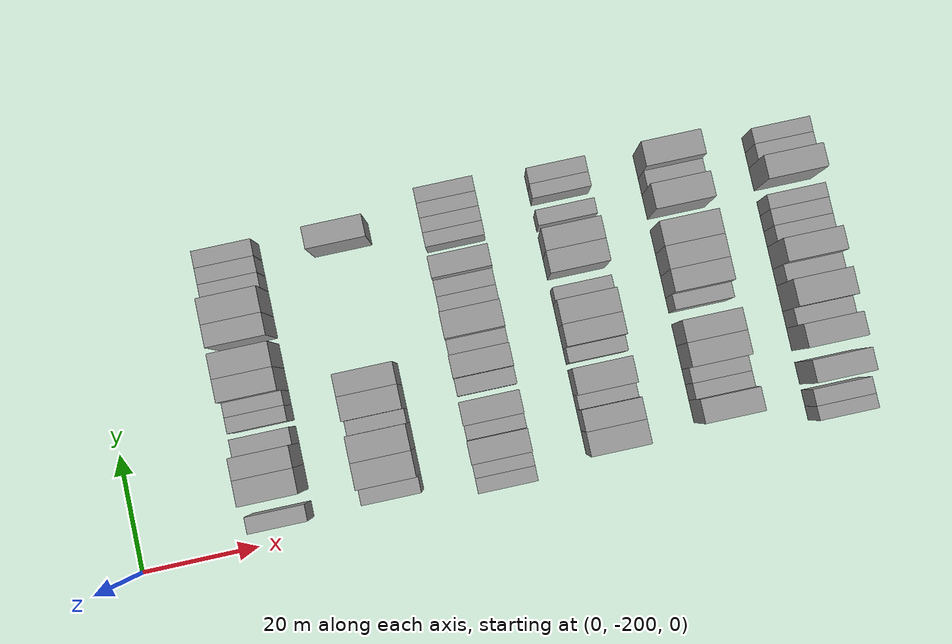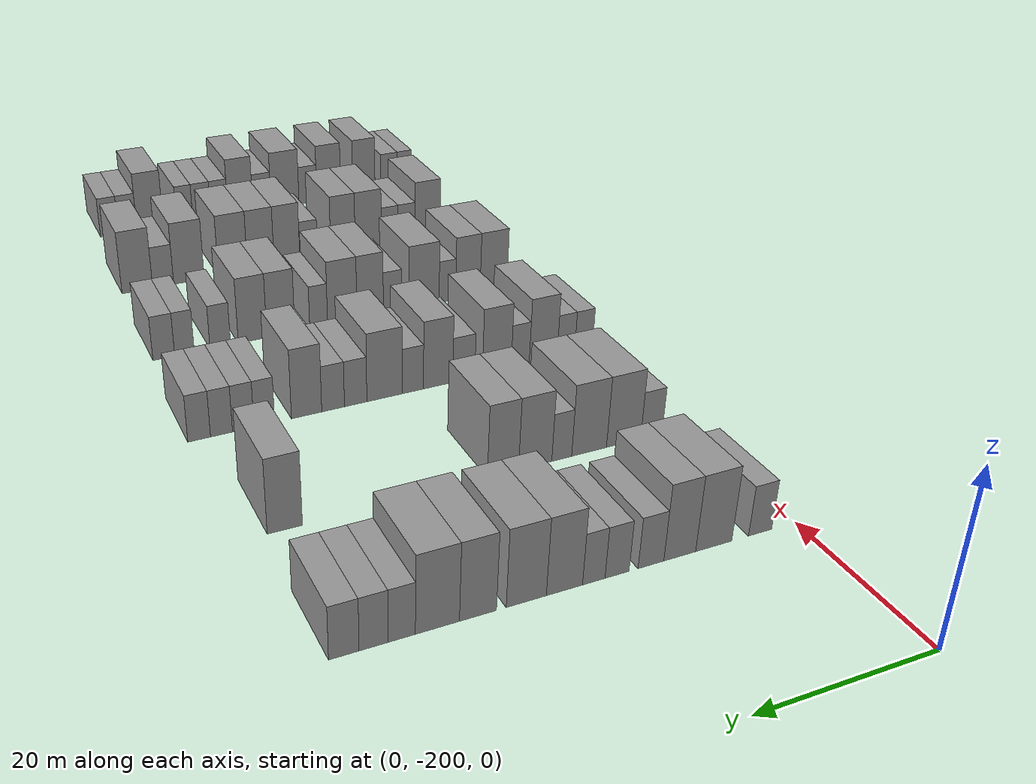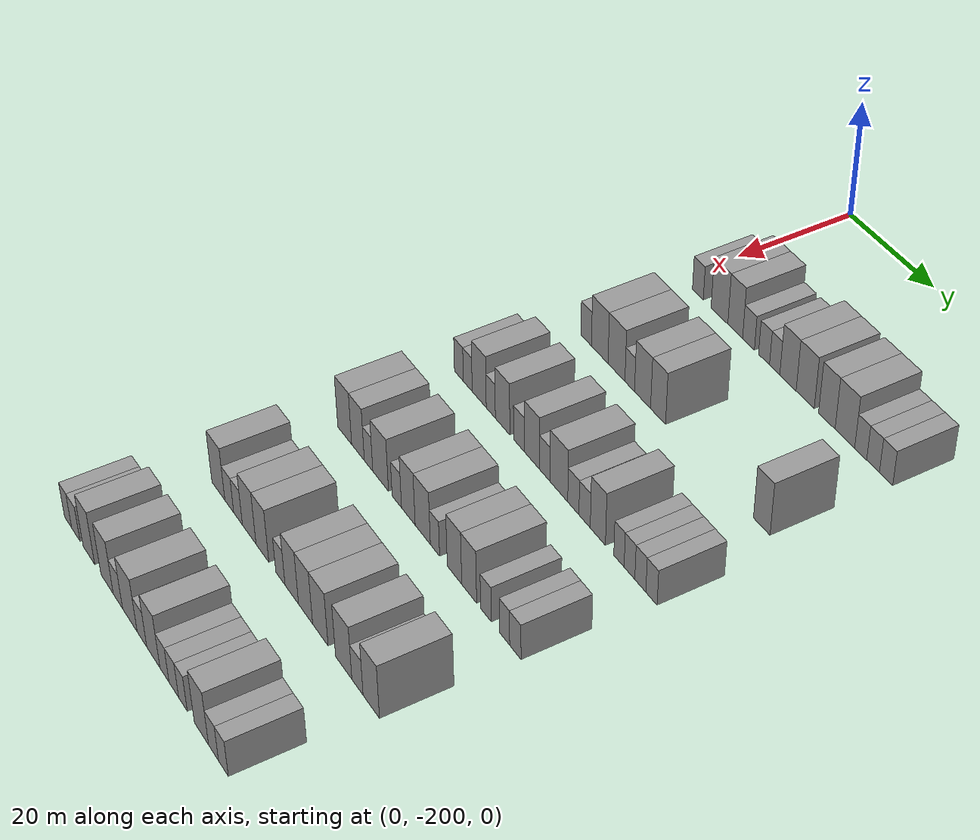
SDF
<sdf version="1.6">
 <world name="default">
  <model name="building_37">
   <static>1</static>
   <pose>25.0000 -195.6696 0 0.000000 0.000000 0.000000</pose>
   <link name="link">
    <pose>0 0 3.00 0 0 0</pose>
    <collision name="collision"><geometry><box><size>10.0000 2.7871 6.0000</size></box></geometry></collision>
    <visual name="visual">
     <cast_shadows>0</cast_shadows>
     <geometry><box><size>10.0000 2.7871 6.0000</size></box></geometry>
     <material>
      <script>
       <uri>model://grey_wall/materials/scripts</uri>
       <uri>model://grey_wall/materials/textures</uri>
       <name>vrc/grey_wall</name>
      </script>
     </material>
    </visual>
   </link>
  </model>
  <model name="building_38">
   <static>1</static>
   <pose>25.0000 -190.1585 0 0.000000 0.000000 0.000000</pose>
   <link name="link">
    <pose>0 0 4.50 0 0 0</pose>
    <collision name="collision"><geometry><box><size>10.0000 4.2351 9.0000</size></box></geometry></collision>
    <visual name="visual">
     <cast_shadows>0</cast_shadows>
     <geometry><box><size>10.0000 4.2351 9.0000</size></box></geometry>
     <material>
      <script>
       <uri>model://grey_wall/materials/scripts</uri>
       <uri>model://grey_wall/materials/textures</uri>
       <name>vrc/grey_wall</name>
      </script>
     </material>
    </visual>
   </link>
  </model>
  <model name="building_39">
   <static>1</static>
   <pose>25.0000 -186.2108 0 0.000000 0.000000 0.000000</pose>
   <link name="link">
    <pose>0 0 4.50 0 0 0</pose>
    <collision name="collision"><geometry><box><size>10.0000 3.6603 9.0000</size></box></geometry></collision>
    <visual name="visual">
     <cast_shadows>0</cast_shadows>
     <geometry><box><size>10.0000 3.6603 9.0000</size></box></geometry>
     <material>
      <script>
       <uri>model://grey_wall/materials/scripts</uri>
       <uri>model://grey_wall/materials/textures</uri>
       <name>vrc/grey_wall</name>
      </script>
     </material>
    </visual>
   </link>
  </model>
  <model name="building_40">
   <static>1</static>
   <pose>25.0000 -182.9294 0 0.000000 0.000000 0.000000</pose>
   <link name="link">
    <pose>0 0 3.00 0 0 0</pose>
    <collision name="collision"><geometry><box><size>10.0000 2.9024 6.0000</size></box></geometry></collision>
    <visual name="visual">
     <cast_shadows>0</cast_shadows>
     <geometry><box><size>10.0000 2.9024 6.0000</size></box></geometry>
     <material>
      <script>
       <uri>model://grey_wall/materials/scripts</uri>
       <uri>model://grey_wall/materials/textures</uri>
       <name>vrc/grey_wall</name>
      </script>
     </material>
    </visual>
   </link>
  </model>
  <model name="building_41">
   <static>1</static>
   <pose>25.0000 -179.1483 0 0.000000 0.000000 0.000000</pose>
   <link name="link">
    <pose>0 0 3.00 0 0 0</pose>
    <collision name="collision"><geometry><box><size>10.0000 2.6597 6.0000</size></box></geometry></collision>
    <visual name="visual">
     <cast_shadows>0</cast_shadows>
     <geometry><box><size>10.0000 2.6597 6.0000</size></box></geometry>
     <material>
      <script>
       <uri>model://grey_wall/materials/scripts</uri>
       <uri>model://grey_wall/materials/textures</uri>
       <name>vrc/grey_wall</name>
      </script>
     </material>
    </visual>
   </link>
  </model>
  <model name="building_42">
   <static>1</static>
   <pose>25.0000 -176.5922 0 0.000000 0.000000 0.000000</pose>
   <link name="link">
    <pose>0 0 3.00 0 0 0</pose>
    <collision name="collision"><geometry><box><size>10.0000 2.4525 6.0000</size></box></geometry></collision>
    <visual name="visual">
     <cast_shadows>0</cast_shadows>
     <geometry><box><size>10.0000 2.4525 6.0000</size></box></geometry>
     <material>
      <script>
       <uri>model://grey_wall/materials/scripts</uri>
       <uri>model://grey_wall/materials/textures</uri>
       <name>vrc/grey_wall</name>
      </script>
     </material>
    </visual>
   </link>
  </model>
  <model name="building_43">
   <static>1</static>
   <pose>25.0000 -173.4291 0 0.000000 0.000000 0.000000</pose>
   <link name="link">
    <pose>0 0 4.50 0 0 0</pose>
    <collision name="collision"><geometry><box><size>10.0000 3.8737 9.0000</size></box></geometry></collision>
    <visual name="visual">
     <cast_shadows>0</cast_shadows>
     <geometry><box><size>10.0000 3.8737 9.0000</size></box></geometry>
     <material>
      <script>
       <uri>model://grey_wall/materials/scripts</uri>
       <uri>model://grey_wall/materials/textures</uri>
       <name>vrc/grey_wall</name>
      </script>
     </material>
    </visual>
   </link>
  </model>
  <model name="building_44">
   <static>1</static>
   <pose>25.0000 -169.3907 0 0.000000 0.000000 0.000000</pose>
   <link name="link">
    <pose>0 0 4.50 0 0 0</pose>
    <collision name="collision"><geometry><box><size>10.0000 4.2030 9.0000</size></box></geometry></collision>
    <visual name="visual">
     <cast_shadows>0</cast_shadows>
     <geometry><box><size>10.0000 4.2030 9.0000</size></box></geometry>
     <material>
      <script>
       <uri>model://grey_wall/materials/scripts</uri>
       <uri>model://grey_wall/materials/textures</uri>
       <name>vrc/grey_wall</name>
      </script>
     </material>
    </visual>
   </link>
  </model>
  <model name="building_45">
   <static>1</static>
   <pose>25.0000 -164.4066 0 0.000000 0.000000 0.000000</pose>
   <link name="link">
    <pose>0 0 4.50 0 0 0</pose>
    <collision name="collision"><geometry><box><size>10.0000 3.7653 9.0000</size></box></geometry></collision>
    <visual name="visual">
     <cast_shadows>0</cast_shadows>
     <geometry><box><size>10.0000 3.7653 9.0000</size></box></geometry>
     <material>
      <script>
       <uri>model://grey_wall/materials/scripts</uri>
       <uri>model://grey_wall/materials/textures</uri>
       <name>vrc/grey_wall</name>
      </script>
     </material>
    </visual>
   </link>
  </model>
  <model name="building_46">
   <static>1</static>
   <pose>25.0000 -160.3309 0 0.000000 0.000000 0.000000</pose>
   <link name="link">
    <pose>0 0 4.50 0 0 0</pose>
    <collision name="collision"><geometry><box><size>10.0000 4.3860 9.0000</size></box></geometry></collision>
    <visual name="visual">
     <cast_shadows>0</cast_shadows>
     <geometry><box><size>10.0000 4.3860 9.0000</size></box></geometry>
     <material>
      <script>
       <uri>model://grey_wall/materials/scripts</uri>
       <uri>model://grey_wall/materials/textures</uri>
       <name>vrc/grey_wall</name>
      </script>
     </material>
    </visual>
   </link>
  </model>
  <model name="building_47">
   <static>1</static>
   <pose>25.0000 -156.8143 0 0.000000 0.000000 0.000000</pose>
   <link name="link">
    <pose>0 0 3.00 0 0 0</pose>
    <collision name="collision"><geometry><box><size>10.0000 2.6471 6.0000</size></box></geometry></collision>
    <visual name="visual">
     <cast_shadows>0</cast_shadows>
     <geometry><box><size>10.0000 2.6471 6.0000</size></box></geometry>
     <material>
      <script>
       <uri>model://grey_wall/materials/scripts</uri>
       <uri>model://grey_wall/materials/textures</uri>
       <name>vrc/grey_wall</name>
      </script>
     </material>
    </visual>
   </link>
  </model>
  <model name="building_48">
   <static>1</static>
   <pose>25.0000 -154.0976 0 0.000000 0.000000 0.000000</pose>
   <link name="link">
    <pose>0 0 3.00 0 0 0</pose>
    <collision name="collision"><geometry><box><size>10.0000 2.7864 6.0000</size></box></geometry></collision>
    <visual name="visual">
     <cast_shadows>0</cast_shadows>
     <geometry><box><size>10.0000 2.7864 6.0000</size></box></geometry>
     <material>
      <script>
       <uri>model://grey_wall/materials/scripts</uri>
       <uri>model://grey_wall/materials/textures</uri>
       <name>vrc/grey_wall</name>
      </script>
     </material>
    </visual>
   </link>
  </model>
  <model name="building_49">
   <static>1</static>
   <pose>25.0000 -151.2624 0 0.000000 0.000000 0.000000</pose>
   <link name="link">
    <pose>0 0 3.00 0 0 0</pose>
    <collision name="collision"><geometry><box><size>10.0000 2.8840 6.0000</size></box></geometry></collision>
    <visual name="visual">
     <cast_shadows>0</cast_shadows>
     <geometry><box><size>10.0000 2.8840 6.0000</size></box></geometry>
     <material>
      <script>
       <uri>model://grey_wall/materials/scripts</uri>
       <uri>model://grey_wall/materials/textures</uri>
       <name>vrc/grey_wall</name>
      </script>
     </material>
    </visual>
   </link>
  </model>
  <model name="building_209">
   <static>1</static>
   <pose>44.0000 -195.1063 0 0.000000 0.000000 0.000000</pose>
   <link name="link">
    <pose>0 0 3.00 0 0 0</pose>
    <collision name="collision"><geometry><box><size>10.0000 2.7976 6.0000</size></box></geometry></collision>
    <visual name="visual">
     <cast_shadows>0</cast_shadows>
     <geometry><box><size>10.0000 2.7976 6.0000</size></box></geometry>
     <material>
      <script>
       <uri>model://grey_wall/materials/scripts</uri>
       <uri>model://grey_wall/materials/textures</uri>
       <name>vrc/grey_wall</name>
      </script>
     </material>
    </visual>
   </link>
  </model>
  <model name="building_210">
   <static>1</static>
   <pose>44.0000 -191.5254 0 0.000000 0.000000 0.000000</pose>
   <link name="link">
    <pose>0 0 4.50 0 0 0</pose>
    <collision name="collision"><geometry><box><size>10.0000 4.3641 9.0000</size></box></geometry></collision>
    <visual name="visual">
     <cast_shadows>0</cast_shadows>
     <geometry><box><size>10.0000 4.3641 9.0000</size></box></geometry>
     <material>
      <script>
       <uri>model://grey_wall/materials/scripts</uri>
       <uri>model://grey_wall/materials/textures</uri>
       <name>vrc/grey_wall</name>
      </script>
     </material>
    </visual>
   </link>
  </model>
  <model name="building_211">
   <static>1</static>
   <pose>44.0000 -187.1577 0 0.000000 0.000000 0.000000</pose>
   <link name="link">
    <pose>0 0 4.50 0 0 0</pose>
    <collision name="collision"><geometry><box><size>10.0000 4.3714 9.0000</size></box></geometry></collision>
    <visual name="visual">
     <cast_shadows>0</cast_shadows>
     <geometry><box><size>10.0000 4.3714 9.0000</size></box></geometry>
     <material>
      <script>
       <uri>model://grey_wall/materials/scripts</uri>
       <uri>model://grey_wall/materials/textures</uri>
       <name>vrc/grey_wall</name>
      </script>
     </material>
    </visual>
   </link>
  </model>
  <model name="building_212">
   <static>1</static>
   <pose>44.0000 -183.7481 0 0.000000 0.000000 0.000000</pose>
   <link name="link">
    <pose>0 0 3.00 0 0 0</pose>
    <collision name="collision"><geometry><box><size>10.0000 2.4478 6.0000</size></box></geometry></collision>
    <visual name="visual">
     <cast_shadows>0</cast_shadows>
     <geometry><box><size>10.0000 2.4478 6.0000</size></box></geometry>
     <material>
      <script>
       <uri>model://grey_wall/materials/scripts</uri>
       <uri>model://grey_wall/materials/textures</uri>
       <name>vrc/grey_wall</name>
      </script>
     </material>
    </visual>
   </link>
  </model>
  <model name="building_213">
   <static>1</static>
   <pose>44.0000 -180.5051 0 0.000000 0.000000 0.000000</pose>
   <link name="link">
    <pose>0 0 4.50 0 0 0</pose>
    <collision name="collision"><geometry><box><size>10.0000 4.0382 9.0000</size></box></geometry></collision>
    <visual name="visual">
     <cast_shadows>0</cast_shadows>
     <geometry><box><size>10.0000 4.0382 9.0000</size></box></geometry>
     <material>
      <script>
       <uri>model://grey_wall/materials/scripts</uri>
       <uri>model://grey_wall/materials/textures</uri>
       <name>vrc/grey_wall</name>
      </script>
     </material>
    </visual>
   </link>
  </model>
  <model name="building_214">
   <static>1</static>
   <pose>44.0000 -176.6259 0 0.000000 0.000000 0.000000</pose>
   <link name="link">
    <pose>0 0 4.50 0 0 0</pose>
    <collision name="collision"><geometry><box><size>10.0000 3.7202 9.0000</size></box></geometry></collision>
    <visual name="visual">
     <cast_shadows>0</cast_shadows>
     <geometry><box><size>10.0000 3.7202 9.0000</size></box></geometry>
     <material>
      <script>
       <uri>model://grey_wall/materials/scripts</uri>
       <uri>model://grey_wall/materials/textures</uri>
       <name>vrc/grey_wall</name>
      </script>
     </material>
    </visual>
   </link>
  </model>
  <model name="building_215">
   <static>1</static>
   <pose>44.0000 -152.1968 0 0.000000 0.000000 0.000000</pose>
   <link name="link">
    <pose>0 0 4.50 0 0 0</pose>
    <collision name="collision"><geometry><box><size>10.0000 3.7126 9.0000</size></box></geometry></collision>
    <visual name="visual">
     <cast_shadows>0</cast_shadows>
     <geometry><box><size>10.0000 3.7126 9.0000</size></box></geometry>
     <material>
      <script>
       <uri>model://grey_wall/materials/scripts</uri>
       <uri>model://grey_wall/materials/textures</uri>
       <name>vrc/grey_wall</name>
      </script>
     </material>
    </visual>
   </link>
  </model>
  <model name="building_380">
   <static>1</static>
   <pose>63.0000 -197.3966 0 0.000000 0.000000 0.000000</pose>
   <link name="link">
    <pose>0 0 3.00 0 0 0</pose>
    <collision name="collision"><geometry><box><size>10.0000 2.5039 6.0000</size></box></geometry></collision>
    <visual name="visual">
     <cast_shadows>0</cast_shadows>
     <geometry><box><size>10.0000 2.5039 6.0000</size></box></geometry>
     <material>
      <script>
       <uri>model://grey_wall/materials/scripts</uri>
       <uri>model://grey_wall/materials/textures</uri>
       <name>vrc/grey_wall</name>
      </script>
     </material>
    </visual>
   </link>
  </model>
  <model name="building_381">
   <static>1</static>
   <pose>63.0000 -194.9215 0 0.000000 0.000000 0.000000</pose>
   <link name="link">
    <pose>0 0 3.00 0 0 0</pose>
    <collision name="collision"><geometry><box><size>10.0000 2.4464 6.0000</size></box></geometry></collision>
    <visual name="visual">
     <cast_shadows>0</cast_shadows>
     <geometry><box><size>10.0000 2.4464 6.0000</size></box></geometry>
     <material>
      <script>
       <uri>model://grey_wall/materials/scripts</uri>
       <uri>model://grey_wall/materials/textures</uri>
       <name>vrc/grey_wall</name>
      </script>
     </material>
    </visual>
   </link>
  </model>
  <model name="building_382">
   <static>1</static>
   <pose>63.0000 -191.7710 0 0.000000 0.000000 0.000000</pose>
   <link name="link">
    <pose>0 0 4.50 0 0 0</pose>
    <collision name="collision"><geometry><box><size>10.0000 3.8546 9.0000</size></box></geometry></collision>
    <visual name="visual">
     <cast_shadows>0</cast_shadows>
     <geometry><box><size>10.0000 3.8546 9.0000</size></box></geometry>
     <material>
      <script>
       <uri>model://grey_wall/materials/scripts</uri>
       <uri>model://grey_wall/materials/textures</uri>
       <name>vrc/grey_wall</name>
      </script>
     </material>
    </visual>
   </link>
  </model>
  <model name="building_383">
   <static>1</static>
   <pose>63.0000 -188.6099 0 0.000000 0.000000 0.000000</pose>
   <link name="link">
    <pose>0 0 3.00 0 0 0</pose>
    <collision name="collision"><geometry><box><size>10.0000 2.4677 6.0000</size></box></geometry></collision>
    <visual name="visual">
     <cast_shadows>0</cast_shadows>
     <geometry><box><size>10.0000 2.4677 6.0000</size></box></geometry>
     <material>
      <script>
       <uri>model://grey_wall/materials/scripts</uri>
       <uri>model://grey_wall/materials/textures</uri>
       <name>vrc/grey_wall</name>
      </script>
     </material>
    </visual>
   </link>
  </model>
  <model name="building_384">
   <static>1</static>
   <pose>63.0000 -185.4399 0 0.000000 0.000000 0.000000</pose>
   <link name="link">
    <pose>0 0 4.50 0 0 0</pose>
    <collision name="collision"><geometry><box><size>10.0000 3.8722 9.0000</size></box></geometry></collision>
    <visual name="visual">
     <cast_shadows>0</cast_shadows>
     <geometry><box><size>10.0000 3.8722 9.0000</size></box></geometry>
     <material>
      <script>
       <uri>model://grey_wall/materials/scripts</uri>
       <uri>model://grey_wall/materials/textures</uri>
       <name>vrc/grey_wall</name>
      </script>
     </material>
    </visual>
   </link>
  </model>
  <model name="building_385">
   <static>1</static>
   <pose>63.0000 -181.0433 0 0.000000 0.000000 0.000000</pose>
   <link name="link">
    <pose>0 0 3.00 0 0 0</pose>
    <collision name="collision"><geometry><box><size>10.0000 2.9210 6.0000</size></box></geometry></collision>
    <visual name="visual">
     <cast_shadows>0</cast_shadows>
     <geometry><box><size>10.0000 2.9210 6.0000</size></box></geometry>
     <material>
      <script>
       <uri>model://grey_wall/materials/scripts</uri>
       <uri>model://grey_wall/materials/textures</uri>
       <name>vrc/grey_wall</name>
      </script>
     </material>
    </visual>
   </link>
  </model>
  <model name="building_386">
   <static>1</static>
   <pose>63.0000 -177.6769 0 0.000000 0.000000 0.000000</pose>
   <link name="link">
    <pose>0 0 4.50 0 0 0</pose>
    <collision name="collision"><geometry><box><size>10.0000 3.8117 9.0000</size></box></geometry></collision>
    <visual name="visual">
     <cast_shadows>0</cast_shadows>
     <geometry><box><size>10.0000 3.8117 9.0000</size></box></geometry>
     <material>
      <script>
       <uri>model://grey_wall/materials/scripts</uri>
       <uri>model://grey_wall/materials/textures</uri>
       <name>vrc/grey_wall</name>
      </script>
     </material>
    </visual>
   </link>
  </model>
  <model name="building_387">
   <static>1</static>
   <pose>63.0000 -174.4155 0 0.000000 0.000000 0.000000</pose>
   <link name="link">
    <pose>0 0 3.00 0 0 0</pose>
    <collision name="collision"><geometry><box><size>10.0000 2.7111 6.0000</size></box></geometry></collision>
    <visual name="visual">
     <cast_shadows>0</cast_shadows>
     <geometry><box><size>10.0000 2.7111 6.0000</size></box></geometry>
     <material>
      <script>
       <uri>model://grey_wall/materials/scripts</uri>
       <uri>model://grey_wall/materials/textures</uri>
       <name>vrc/grey_wall</name>
      </script>
     </material>
    </visual>
   </link>
  </model>
  <model name="building_388">
   <static>1</static>
   <pose>63.0000 -170.8322 0 0.000000 0.000000 0.000000</pose>
   <link name="link">
    <pose>0 0 4.50 0 0 0</pose>
    <collision name="collision"><geometry><box><size>10.0000 4.4555 9.0000</size></box></geometry></collision>
    <visual name="visual">
     <cast_shadows>0</cast_shadows>
     <geometry><box><size>10.0000 4.4555 9.0000</size></box></geometry>
     <material>
      <script>
       <uri>model://grey_wall/materials/scripts</uri>
       <uri>model://grey_wall/materials/textures</uri>
       <name>vrc/grey_wall</name>
      </script>
     </material>
    </visual>
   </link>
  </model>
  <model name="building_389">
   <static>1</static>
   <pose>63.0000 -167.2144 0 0.000000 0.000000 0.000000</pose>
   <link name="link">
    <pose>0 0 3.00 0 0 0</pose>
    <collision name="collision"><geometry><box><size>10.0000 2.7800 6.0000</size></box></geometry></collision>
    <visual name="visual">
     <cast_shadows>0</cast_shadows>
     <geometry><box><size>10.0000 2.7800 6.0000</size></box></geometry>
     <material>
      <script>
       <uri>model://grey_wall/materials/scripts</uri>
       <uri>model://grey_wall/materials/textures</uri>
       <name>vrc/grey_wall</name>
      </script>
     </material>
    </visual>
   </link>
  </model>
  <model name="building_390">
   <static>1</static>
   <pose>63.0000 -164.4337 0 0.000000 0.000000 0.000000</pose>
   <link name="link">
    <pose>0 0 3.00 0 0 0</pose>
    <collision name="collision"><geometry><box><size>10.0000 2.7814 6.0000</size></box></geometry></collision>
    <visual name="visual">
     <cast_shadows>0</cast_shadows>
     <geometry><box><size>10.0000 2.7814 6.0000</size></box></geometry>
     <material>
      <script>
       <uri>model://grey_wall/materials/scripts</uri>
       <uri>model://grey_wall/materials/textures</uri>
       <name>vrc/grey_wall</name>
      </script>
     </material>
    </visual>
   </link>
  </model>
  <model name="building_391">
   <static>1</static>
   <pose>63.0000 -161.2135 0 0.000000 0.000000 0.000000</pose>
   <link name="link">
    <pose>0 0 4.50 0 0 0</pose>
    <collision name="collision"><geometry><box><size>10.0000 3.6589 9.0000</size></box></geometry></collision>
    <visual name="visual">
     <cast_shadows>0</cast_shadows>
     <geometry><box><size>10.0000 3.6589 9.0000</size></box></geometry>
     <material>
      <script>
       <uri>model://grey_wall/materials/scripts</uri>
       <uri>model://grey_wall/materials/textures</uri>
       <name>vrc/grey_wall</name>
      </script>
     </material>
    </visual>
   </link>
  </model>
  <model name="building_392">
   <static>1</static>
   <pose>63.0000 -156.1654 0 0.000000 0.000000 0.000000</pose>
   <link name="link">
    <pose>0 0 3.00 0 0 0</pose>
    <collision name="collision"><geometry><box><size>10.0000 2.4373 6.0000</size></box></geometry></collision>
    <visual name="visual">
     <cast_shadows>0</cast_shadows>
     <geometry><box><size>10.0000 2.4373 6.0000</size></box></geometry>
     <material>
      <script>
       <uri>model://grey_wall/materials/scripts</uri>
       <uri>model://grey_wall/materials/textures</uri>
       <name>vrc/grey_wall</name>
      </script>
     </material>
    </visual>
   </link>
  </model>
  <model name="building_393">
   <static>1</static>
   <pose>63.0000 -153.6928 0 0.000000 0.000000 0.000000</pose>
   <link name="link">
    <pose>0 0 3.00 0 0 0</pose>
    <collision name="collision"><geometry><box><size>10.0000 2.5080 6.0000</size></box></geometry></collision>
    <visual name="visual">
     <cast_shadows>0</cast_shadows>
     <geometry><box><size>10.0000 2.5080 6.0000</size></box></geometry>
     <material>
      <script>
       <uri>model://grey_wall/materials/scripts</uri>
       <uri>model://grey_wall/materials/textures</uri>
       <name>vrc/grey_wall</name>
      </script>
     </material>
    </visual>
   </link>
  </model>
  <model name="building_394">
   <static>1</static>
   <pose>63.0000 -151.1677 0 0.000000 0.000000 0.000000</pose>
   <link name="link">
    <pose>0 0 3.00 0 0 0</pose>
    <collision name="collision"><geometry><box><size>10.0000 2.5423 6.0000</size></box></geometry></collision>
    <visual name="visual">
     <cast_shadows>0</cast_shadows>
     <geometry><box><size>10.0000 2.5423 6.0000</size></box></geometry>
     <material>
      <script>
       <uri>model://grey_wall/materials/scripts</uri>
       <uri>model://grey_wall/materials/textures</uri>
       <name>vrc/grey_wall</name>
      </script>
     </material>
    </visual>
   </link>
  </model>
  <model name="building_395">
   <static>1</static>
   <pose>63.0000 -148.6049 0 0.000000 0.000000 0.000000</pose>
   <link name="link">
    <pose>0 0 3.00 0 0 0</pose>
    <collision name="collision"><geometry><box><size>10.0000 2.5834 6.0000</size></box></geometry></collision>
    <visual name="visual">
     <cast_shadows>0</cast_shadows>
     <geometry><box><size>10.0000 2.5834 6.0000</size></box></geometry>
     <material>
      <script>
       <uri>model://grey_wall/materials/scripts</uri>
       <uri>model://grey_wall/materials/textures</uri>
       <name>vrc/grey_wall</name>
      </script>
     </material>
    </visual>
   </link>
  </model>
  <model name="building_561">
   <static>1</static>
   <pose>82.0000 -194.5143 0 0.000000 0.000000 0.000000</pose>
   <link name="link">
    <pose>0 0 4.50 0 0 0</pose>
    <collision name="collision"><geometry><box><size>10.0000 4.0336 9.0000</size></box></geometry></collision>
    <visual name="visual">
     <cast_shadows>0</cast_shadows>
     <geometry><box><size>10.0000 4.0336 9.0000</size></box></geometry>
     <material>
      <script>
       <uri>model://grey_wall/materials/scripts</uri>
       <uri>model://grey_wall/materials/textures</uri>
       <name>vrc/grey_wall</name>
      </script>
     </material>
    </visual>
   </link>
  </model>
  <model name="building_562">
   <static>1</static>
   <pose>82.0000 -190.6837 0 0.000000 0.000000 0.000000</pose>
   <link name="link">
    <pose>0 0 4.50 0 0 0</pose>
    <collision name="collision"><geometry><box><size>10.0000 3.6277 9.0000</size></box></geometry></collision>
    <visual name="visual">
     <cast_shadows>0</cast_shadows>
     <geometry><box><size>10.0000 3.6277 9.0000</size></box></geometry>
     <material>
      <script>
       <uri>model://grey_wall/materials/scripts</uri>
       <uri>model://grey_wall/materials/textures</uri>
       <name>vrc/grey_wall</name>
      </script>
     </material>
    </visual>
   </link>
  </model>
  <model name="building_563">
   <static>1</static>
   <pose>82.0000 -187.6686 0 0.000000 0.000000 0.000000</pose>
   <link name="link">
    <pose>0 0 3.00 0 0 0</pose>
    <collision name="collision"><geometry><box><size>10.0000 2.4023 6.0000</size></box></geometry></collision>
    <visual name="visual">
     <cast_shadows>0</cast_shadows>
     <geometry><box><size>10.0000 2.4023 6.0000</size></box></geometry>
     <material>
      <script>
       <uri>model://grey_wall/materials/scripts</uri>
       <uri>model://grey_wall/materials/textures</uri>
       <name>vrc/grey_wall</name>
      </script>
     </material>
    </visual>
   </link>
  </model>
  <model name="building_564">
   <static>1</static>
   <pose>82.0000 -184.2742 0 0.000000 0.000000 0.000000</pose>
   <link name="link">
    <pose>0 0 4.50 0 0 0</pose>
    <collision name="collision"><geometry><box><size>10.0000 4.3865 9.0000</size></box></geometry></collision>
    <visual name="visual">
     <cast_shadows>0</cast_shadows>
     <geometry><box><size>10.0000 4.3865 9.0000</size></box></geometry>
     <material>
      <script>
       <uri>model://grey_wall/materials/scripts</uri>
       <uri>model://grey_wall/materials/textures</uri>
       <name>vrc/grey_wall</name>
      </script>
     </material>
    </visual>
   </link>
  </model>
  <model name="building_565">
   <static>1</static>
   <pose>82.0000 -179.7882 0 0.000000 0.000000 0.000000</pose>
   <link name="link">
    <pose>0 0 3.00 0 0 0</pose>
    <collision name="collision"><geometry><box><size>10.0000 2.5855 6.0000</size></box></geometry></collision>
    <visual name="visual">
     <cast_shadows>0</cast_shadows>
     <geometry><box><size>10.0000 2.5855 6.0000</size></box></geometry>
     <material>
      <script>
       <uri>model://grey_wall/materials/scripts</uri>
       <uri>model://grey_wall/materials/textures</uri>
       <name>vrc/grey_wall</name>
      </script>
     </material>
    </visual>
   </link>
  </model>
  <model name="building_566">
   <static>1</static>
   <pose>82.0000 -176.6478 0 0.000000 0.000000 0.000000</pose>
   <link name="link">
    <pose>0 0 4.50 0 0 0</pose>
    <collision name="collision"><geometry><box><size>10.0000 3.6953 9.0000</size></box></geometry></collision>
    <visual name="visual">
     <cast_shadows>0</cast_shadows>
     <geometry><box><size>10.0000 3.6953 9.0000</size></box></geometry>
     <material>
      <script>
       <uri>model://grey_wall/materials/scripts</uri>
       <uri>model://grey_wall/materials/textures</uri>
       <name>vrc/grey_wall</name>
      </script>
     </material>
    </visual>
   </link>
  </model>
  <model name="building_567">
   <static>1</static>
   <pose>82.0000 -172.7800 0 0.000000 0.000000 0.000000</pose>
   <link name="link">
    <pose>0 0 4.50 0 0 0</pose>
    <collision name="collision"><geometry><box><size>10.0000 4.0404 9.0000</size></box></geometry></collision>
    <visual name="visual">
     <cast_shadows>0</cast_shadows>
     <geometry><box><size>10.0000 4.0404 9.0000</size></box></geometry>
     <material>
      <script>
       <uri>model://grey_wall/materials/scripts</uri>
       <uri>model://grey_wall/materials/textures</uri>
       <name>vrc/grey_wall</name>
      </script>
     </material>
    </visual>
   </link>
  </model>
  <model name="building_568">
   <static>1</static>
   <pose>82.0000 -169.5482 0 0.000000 0.000000 0.000000</pose>
   <link name="link">
    <pose>0 0 3.00 0 0 0</pose>
    <collision name="collision"><geometry><box><size>10.0000 2.4232 6.0000</size></box></geometry></collision>
    <visual name="visual">
     <cast_shadows>0</cast_shadows>
     <geometry><box><size>10.0000 2.4232 6.0000</size></box></geometry>
     <material>
      <script>
       <uri>model://grey_wall/materials/scripts</uri>
       <uri>model://grey_wall/materials/textures</uri>
       <name>vrc/grey_wall</name>
      </script>
     </material>
    </visual>
   </link>
  </model>
  <model name="building_569">
   <static>1</static>
   <pose>82.0000 -164.4735 0 0.000000 0.000000 0.000000</pose>
   <link name="link">
    <pose>0 0 4.50 0 0 0</pose>
    <collision name="collision"><geometry><box><size>10.0000 3.7262 9.0000</size></box></geometry></collision>
    <visual name="visual">
     <cast_shadows>0</cast_shadows>
     <geometry><box><size>10.0000 3.7262 9.0000</size></box></geometry>
     <material>
      <script>
       <uri>model://grey_wall/materials/scripts</uri>
       <uri>model://grey_wall/materials/textures</uri>
       <name>vrc/grey_wall</name>
      </script>
     </material>
    </visual>
   </link>
  </model>
  <model name="building_570">
   <static>1</static>
   <pose>82.0000 -160.7329 0 0.000000 0.000000 0.000000</pose>
   <link name="link">
    <pose>0 0 4.50 0 0 0</pose>
    <collision name="collision"><geometry><box><size>10.0000 3.7551 9.0000</size></box></geometry></collision>
    <visual name="visual">
     <cast_shadows>0</cast_shadows>
     <geometry><box><size>10.0000 3.7551 9.0000</size></box></geometry>
     <material>
      <script>
       <uri>model://grey_wall/materials/scripts</uri>
       <uri>model://grey_wall/materials/textures</uri>
       <name>vrc/grey_wall</name>
      </script>
     </material>
    </visual>
   </link>
  </model>
  <model name="building_571">
   <static>1</static>
   <pose>82.0000 -156.5304 0 0.000000 0.000000 0.000000</pose>
   <link name="link">
    <pose>0 0 3.00 0 0 0</pose>
    <collision name="collision"><geometry><box><size>10.0000 2.6499 6.0000</size></box></geometry></collision>
    <visual name="visual">
     <cast_shadows>0</cast_shadows>
     <geometry><box><size>10.0000 2.6499 6.0000</size></box></geometry>
     <material>
      <script>
       <uri>model://grey_wall/materials/scripts</uri>
       <uri>model://grey_wall/materials/textures</uri>
       <name>vrc/grey_wall</name>
      </script>
     </material>
    </visual>
   </link>
  </model>
  <model name="building_572">
   <static>1</static>
   <pose>82.0000 -151.9696 0 0.000000 0.000000 0.000000</pose>
   <link name="link">
    <pose>0 0 3.00 0 0 0</pose>
    <collision name="collision"><geometry><box><size>10.0000 2.4718 6.0000</size></box></geometry></collision>
    <visual name="visual">
     <cast_shadows>0</cast_shadows>
     <geometry><box><size>10.0000 2.4718 6.0000</size></box></geometry>
     <material>
      <script>
       <uri>model://grey_wall/materials/scripts</uri>
       <uri>model://grey_wall/materials/textures</uri>
       <name>vrc/grey_wall</name>
      </script>
     </material>
    </visual>
   </link>
  </model>
  <model name="building_573">
   <static>1</static>
   <pose>82.0000 -149.3710 0 0.000000 0.000000 0.000000</pose>
   <link name="link">
    <pose>0 0 3.00 0 0 0</pose>
    <collision name="collision"><geometry><box><size>10.0000 2.7254 6.0000</size></box></geometry></collision>
    <visual name="visual">
     <cast_shadows>0</cast_shadows>
     <geometry><box><size>10.0000 2.7254 6.0000</size></box></geometry>
     <material>
      <script>
       <uri>model://grey_wall/materials/scripts</uri>
       <uri>model://grey_wall/materials/textures</uri>
       <name>vrc/grey_wall</name>
      </script>
     </material>
    </visual>
   </link>
  </model>
  <model name="building_733">
   <static>1</static>
   <pose>101.0000 -193.2706 0 0.000000 0.000000 0.000000</pose>
   <link name="link">
    <pose>0 0 4.50 0 0 0</pose>
    <collision name="collision"><geometry><box><size>10.0000 3.9781 9.0000</size></box></geometry></collision>
    <visual name="visual">
     <cast_shadows>0</cast_shadows>
     <geometry><box><size>10.0000 3.9781 9.0000</size></box></geometry>
     <material>
      <script>
       <uri>model://grey_wall/materials/scripts</uri>
       <uri>model://grey_wall/materials/textures</uri>
       <name>vrc/grey_wall</name>
      </script>
     </material>
    </visual>
   </link>
  </model>
  <model name="building_734">
   <static>1</static>
   <pose>101.0000 -189.9423 0 0.000000 0.000000 0.000000</pose>
   <link name="link">
    <pose>0 0 3.00 0 0 0</pose>
    <collision name="collision"><geometry><box><size>10.0000 2.6785 6.0000</size></box></geometry></collision>
    <visual name="visual">
     <cast_shadows>0</cast_shadows>
     <geometry><box><size>10.0000 2.6785 6.0000</size></box></geometry>
     <material>
      <script>
       <uri>model://grey_wall/materials/scripts</uri>
       <uri>model://grey_wall/materials/textures</uri>
       <name>vrc/grey_wall</name>
      </script>
     </material>
    </visual>
   </link>
  </model>
  <model name="building_735">
   <static>1</static>
   <pose>101.0000 -187.3015 0 0.000000 0.000000 0.000000</pose>
   <link name="link">
    <pose>0 0 3.00 0 0 0</pose>
    <collision name="collision"><geometry><box><size>10.0000 2.6030 6.0000</size></box></geometry></collision>
    <visual name="visual">
     <cast_shadows>0</cast_shadows>
     <geometry><box><size>10.0000 2.6030 6.0000</size></box></geometry>
     <material>
      <script>
       <uri>model://grey_wall/materials/scripts</uri>
       <uri>model://grey_wall/materials/textures</uri>
       <name>vrc/grey_wall</name>
      </script>
     </material>
    </visual>
   </link>
  </model>
  <model name="building_736">
   <static>1</static>
   <pose>101.0000 -183.9855 0 0.000000 0.000000 0.000000</pose>
   <link name="link">
    <pose>0 0 4.50 0 0 0</pose>
    <collision name="collision"><geometry><box><size>10.0000 4.0289 9.0000</size></box></geometry></collision>
    <visual name="visual">
     <cast_shadows>0</cast_shadows>
     <geometry><box><size>10.0000 4.0289 9.0000</size></box></geometry>
     <material>
      <script>
       <uri>model://grey_wall/materials/scripts</uri>
       <uri>model://grey_wall/materials/textures</uri>
       <name>vrc/grey_wall</name>
      </script>
     </material>
    </visual>
   </link>
  </model>
  <model name="building_737">
   <static>1</static>
   <pose>101.0000 -180.1106 0 0.000000 0.000000 0.000000</pose>
   <link name="link">
    <pose>0 0 4.50 0 0 0</pose>
    <collision name="collision"><geometry><box><size>10.0000 3.7209 9.0000</size></box></geometry></collision>
    <visual name="visual">
     <cast_shadows>0</cast_shadows>
     <geometry><box><size>10.0000 3.7209 9.0000</size></box></geometry>
     <material>
      <script>
       <uri>model://grey_wall/materials/scripts</uri>
       <uri>model://grey_wall/materials/textures</uri>
       <name>vrc/grey_wall</name>
      </script>
     </material>
    </visual>
   </link>
  </model>
  <model name="building_738">
   <static>1</static>
   <pose>101.0000 -174.9377 0 0.000000 0.000000 0.000000</pose>
   <link name="link">
    <pose>0 0 3.00 0 0 0</pose>
    <collision name="collision"><geometry><box><size>10.0000 2.6251 6.0000</size></box></geometry></collision>
    <visual name="visual">
     <cast_shadows>0</cast_shadows>
     <geometry><box><size>10.0000 2.6251 6.0000</size></box></geometry>
     <material>
      <script>
       <uri>model://grey_wall/materials/scripts</uri>
       <uri>model://grey_wall/materials/textures</uri>
       <name>vrc/grey_wall</name>
      </script>
     </material>
    </visual>
   </link>
  </model>
  <model name="building_739">
   <static>1</static>
   <pose>101.0000 -171.7274 0 0.000000 0.000000 0.000000</pose>
   <link name="link">
    <pose>0 0 4.50 0 0 0</pose>
    <collision name="collision"><geometry><box><size>10.0000 3.7954 9.0000</size></box></geometry></collision>
    <visual name="visual">
     <cast_shadows>0</cast_shadows>
     <geometry><box><size>10.0000 3.7954 9.0000</size></box></geometry>
     <material>
      <script>
       <uri>model://grey_wall/materials/scripts</uri>
       <uri>model://grey_wall/materials/textures</uri>
       <name>vrc/grey_wall</name>
      </script>
     </material>
    </visual>
   </link>
  </model>
  <model name="building_740">
   <static>1</static>
   <pose>101.0000 -167.8902 0 0.000000 0.000000 0.000000</pose>
   <link name="link">
    <pose>0 0 4.50 0 0 0</pose>
    <collision name="collision"><geometry><box><size>10.0000 3.8791 9.0000</size></box></geometry></collision>
    <visual name="visual">
     <cast_shadows>0</cast_shadows>
     <geometry><box><size>10.0000 3.8791 9.0000</size></box></geometry>
     <material>
      <script>
       <uri>model://grey_wall/materials/scripts</uri>
       <uri>model://grey_wall/materials/textures</uri>
       <name>vrc/grey_wall</name>
      </script>
     </material>
    </visual>
   </link>
  </model>
  <model name="building_741">
   <static>1</static>
   <pose>101.0000 -163.8606 0 0.000000 0.000000 0.000000</pose>
   <link name="link">
    <pose>0 0 4.50 0 0 0</pose>
    <collision name="collision"><geometry><box><size>10.0000 4.1801 9.0000</size></box></geometry></collision>
    <visual name="visual">
     <cast_shadows>0</cast_shadows>
     <geometry><box><size>10.0000 4.1801 9.0000</size></box></geometry>
     <material>
      <script>
       <uri>model://grey_wall/materials/scripts</uri>
       <uri>model://grey_wall/materials/textures</uri>
       <name>vrc/grey_wall</name>
      </script>
     </material>
    </visual>
   </link>
  </model>
  <model name="building_742">
   <static>1</static>
   <pose>101.0000 -157.6305 0 0.000000 0.000000 0.000000</pose>
   <link name="link">
    <pose>0 0 4.50 0 0 0</pose>
    <collision name="collision"><geometry><box><size>10.0000 4.2801 9.0000</size></box></geometry></collision>
    <visual name="visual">
     <cast_shadows>0</cast_shadows>
     <geometry><box><size>10.0000 4.2801 9.0000</size></box></geometry>
     <material>
      <script>
       <uri>model://grey_wall/materials/scripts</uri>
       <uri>model://grey_wall/materials/textures</uri>
       <name>vrc/grey_wall</name>
      </script>
     </material>
    </visual>
   </link>
  </model>
  <model name="building_743">
   <static>1</static>
   <pose>101.0000 -154.0399 0 0.000000 0.000000 0.000000</pose>
   <link name="link">
    <pose>0 0 3.00 0 0 0</pose>
    <collision name="collision"><geometry><box><size>10.0000 2.9012 6.0000</size></box></geometry></collision>
    <visual name="visual">
     <cast_shadows>0</cast_shadows>
     <geometry><box><size>10.0000 2.9012 6.0000</size></box></geometry>
     <material>
      <script>
       <uri>model://grey_wall/materials/scripts</uri>
       <uri>model://grey_wall/materials/textures</uri>
       <name>vrc/grey_wall</name>
      </script>
     </material>
    </visual>
   </link>
  </model>
  <model name="building_744">
   <static>1</static>
   <pose>101.0000 -150.4990 0 0.000000 0.000000 0.000000</pose>
   <link name="link">
    <pose>0 0 4.50 0 0 0</pose>
    <collision name="collision"><geometry><box><size>10.0000 4.1807 9.0000</size></box></geometry></collision>
    <visual name="visual">
     <cast_shadows>0</cast_shadows>
     <geometry><box><size>10.0000 4.1807 9.0000</size></box></geometry>
     <material>
      <script>
       <uri>model://grey_wall/materials/scripts</uri>
       <uri>model://grey_wall/materials/textures</uri>
       <name>vrc/grey_wall</name>
      </script>
     </material>
    </visual>
   </link>
  </model>
  <model name="building_908">
   <static>1</static>
   <pose>120.0000 -197.7296 0 0.000000 0.000000 0.000000</pose>
   <link name="link">
    <pose>0 0 3.00 0 0 0</pose>
    <collision name="collision"><geometry><box><size>10.0000 2.4046 6.0000</size></box></geometry></collision>
    <visual name="visual">
     <cast_shadows>0</cast_shadows>
     <geometry><box><size>10.0000 2.4046 6.0000</size></box></geometry>
     <material>
      <script>
       <uri>model://grey_wall/materials/scripts</uri>
       <uri>model://grey_wall/materials/textures</uri>
       <name>vrc/grey_wall</name>
      </script>
     </material>
    </visual>
   </link>
  </model>
  <model name="building_909">
   <static>1</static>
   <pose>120.0000 -195.1251 0 0.000000 0.000000 0.000000</pose>
   <link name="link">
    <pose>0 0 3.00 0 0 0</pose>
    <collision name="collision"><geometry><box><size>10.0000 2.8043 6.0000</size></box></geometry></collision>
    <visual name="visual">
     <cast_shadows>0</cast_shadows>
     <geometry><box><size>10.0000 2.8043 6.0000</size></box></geometry>
     <material>
      <script>
       <uri>model://grey_wall/materials/scripts</uri>
       <uri>model://grey_wall/materials/textures</uri>
       <name>vrc/grey_wall</name>
      </script>
     </material>
    </visual>
   </link>
  </model>
  <model name="building_910">
   <static>1</static>
   <pose>120.0000 -190.8354 0 0.000000 0.000000 0.000000</pose>
   <link name="link">
    <pose>0 0 4.50 0 0 0</pose>
    <collision name="collision"><geometry><box><size>10.0000 3.7750 9.0000</size></box></geometry></collision>
    <visual name="visual">
     <cast_shadows>0</cast_shadows>
     <geometry><box><size>10.0000 3.7750 9.0000</size></box></geometry>
     <material>
      <script>
       <uri>model://grey_wall/materials/scripts</uri>
       <uri>model://grey_wall/materials/textures</uri>
       <name>vrc/grey_wall</name>
      </script>
     </material>
    </visual>
   </link>
  </model>
  <model name="building_911">
   <static>1</static>
   <pose>120.0000 -184.9771 0 0.000000 0.000000 0.000000</pose>
   <link name="link">
    <pose>0 0 4.50 0 0 0</pose>
    <collision name="collision"><geometry><box><size>10.0000 3.9416 9.0000</size></box></geometry></collision>
    <visual name="visual">
     <cast_shadows>0</cast_shadows>
     <geometry><box><size>10.0000 3.9416 9.0000</size></box></geometry>
     <material>
      <script>
       <uri>model://grey_wall/materials/scripts</uri>
       <uri>model://grey_wall/materials/textures</uri>
       <name>vrc/grey_wall</name>
      </script>
     </material>
    </visual>
   </link>
  </model>
  <model name="building_912">
   <static>1</static>
   <pose>120.0000 -181.5515 0 0.000000 0.000000 0.000000</pose>
   <link name="link">
    <pose>0 0 3.00 0 0 0</pose>
    <collision name="collision"><geometry><box><size>10.0000 2.9095 6.0000</size></box></geometry></collision>
    <visual name="visual">
     <cast_shadows>0</cast_shadows>
     <geometry><box><size>10.0000 2.9095 6.0000</size></box></geometry>
     <material>
      <script>
       <uri>model://grey_wall/materials/scripts</uri>
       <uri>model://grey_wall/materials/textures</uri>
       <name>vrc/grey_wall</name>
      </script>
     </material>
    </visual>
   </link>
  </model>
  <model name="building_913">
   <static>1</static>
   <pose>120.0000 -177.8474 0 0.000000 0.000000 0.000000</pose>
   <link name="link">
    <pose>0 0 4.50 0 0 0</pose>
    <collision name="collision"><geometry><box><size>10.0000 4.4988 9.0000</size></box></geometry></collision>
    <visual name="visual">
     <cast_shadows>0</cast_shadows>
     <geometry><box><size>10.0000 4.4988 9.0000</size></box></geometry>
     <material>
      <script>
       <uri>model://grey_wall/materials/scripts</uri>
       <uri>model://grey_wall/materials/textures</uri>
       <name>vrc/grey_wall</name>
      </script>
     </material>
    </visual>
   </link>
  </model>
  <model name="building_914">
   <static>1</static>
   <pose>120.0000 -174.1476 0 0.000000 0.000000 0.000000</pose>
   <link name="link">
    <pose>0 0 3.00 0 0 0</pose>
    <collision name="collision"><geometry><box><size>10.0000 2.9007 6.0000</size></box></geometry></collision>
    <visual name="visual">
     <cast_shadows>0</cast_shadows>
     <geometry><box><size>10.0000 2.9007 6.0000</size></box></geometry>
     <material>
      <script>
       <uri>model://grey_wall/materials/scripts</uri>
       <uri>model://grey_wall/materials/textures</uri>
       <name>vrc/grey_wall</name>
      </script>
     </material>
    </visual>
   </link>
  </model>
  <model name="building_915">
   <static>1</static>
   <pose>120.0000 -170.7281 0 0.000000 0.000000 0.000000</pose>
   <link name="link">
    <pose>0 0 4.50 0 0 0</pose>
    <collision name="collision"><geometry><box><size>10.0000 3.9384 9.0000</size></box></geometry></collision>
    <visual name="visual">
     <cast_shadows>0</cast_shadows>
     <geometry><box><size>10.0000 3.9384 9.0000</size></box></geometry>
     <material>
      <script>
       <uri>model://grey_wall/materials/scripts</uri>
       <uri>model://grey_wall/materials/textures</uri>
       <name>vrc/grey_wall</name>
      </script>
     </material>
    </visual>
   </link>
  </model>
  <model name="building_916">
   <static>1</static>
   <pose>120.0000 -167.4327 0 0.000000 0.000000 0.000000</pose>
   <link name="link">
    <pose>0 0 3.00 0 0 0</pose>
    <collision name="collision"><geometry><box><size>10.0000 2.6523 6.0000</size></box></geometry></collision>
    <visual name="visual">
     <cast_shadows>0</cast_shadows>
     <geometry><box><size>10.0000 2.6523 6.0000</size></box></geometry>
     <material>
      <script>
       <uri>model://grey_wall/materials/scripts</uri>
       <uri>model://grey_wall/materials/textures</uri>
       <name>vrc/grey_wall</name>
      </script>
     </material>
    </visual>
   </link>
  </model>
  <model name="building_917">
   <static>1</static>
   <pose>120.0000 -164.7140 0 0.000000 0.000000 0.000000</pose>
   <link name="link">
    <pose>0 0 3.00 0 0 0</pose>
    <collision name="collision"><geometry><box><size>10.0000 2.7850 6.0000</size></box></geometry></collision>
    <visual name="visual">
     <cast_shadows>0</cast_shadows>
     <geometry><box><size>10.0000 2.7850 6.0000</size></box></geometry>
     <material>
      <script>
       <uri>model://grey_wall/materials/scripts</uri>
       <uri>model://grey_wall/materials/textures</uri>
       <name>vrc/grey_wall</name>
      </script>
     </material>
    </visual>
   </link>
  </model>
  <model name="building_918">
   <static>1</static>
   <pose>120.0000 -162.0778 0 0.000000 0.000000 0.000000</pose>
   <link name="link">
    <pose>0 0 3.00 0 0 0</pose>
    <collision name="collision"><geometry><box><size>10.0000 2.4874 6.0000</size></box></geometry></collision>
    <visual name="visual">
     <cast_shadows>0</cast_shadows>
     <geometry><box><size>10.0000 2.4874 6.0000</size></box></geometry>
     <material>
      <script>
       <uri>model://grey_wall/materials/scripts</uri>
       <uri>model://grey_wall/materials/textures</uri>
       <name>vrc/grey_wall</name>
      </script>
     </material>
    </visual>
   </link>
  </model>
  <model name="building_919">
   <static>1</static>
   <pose>120.0000 -156.8474 0 0.000000 0.000000 0.000000</pose>
   <link name="link">
    <pose>0 0 4.50 0 0 0</pose>
    <collision name="collision"><geometry><box><size>10.0000 3.9734 9.0000</size></box></geometry></collision>
    <visual name="visual">
     <cast_shadows>0</cast_shadows>
     <geometry><box><size>10.0000 3.9734 9.0000</size></box></geometry>
     <material>
      <script>
       <uri>model://grey_wall/materials/scripts</uri>
       <uri>model://grey_wall/materials/textures</uri>
       <name>vrc/grey_wall</name>
      </script>
     </material>
    </visual>
   </link>
  </model>
  <model name="building_920">
   <static>1</static>
   <pose>120.0000 -153.4879 0 0.000000 0.000000 0.000000</pose>
   <link name="link">
    <pose>0 0 3.00 0 0 0</pose>
    <collision name="collision"><geometry><box><size>10.0000 2.7456 6.0000</size></box></geometry></collision>
    <visual name="visual">
     <cast_shadows>0</cast_shadows>
     <geometry><box><size>10.0000 2.7456 6.0000</size></box></geometry>
     <material>
      <script>
       <uri>model://grey_wall/materials/scripts</uri>
       <uri>model://grey_wall/materials/textures</uri>
       <name>vrc/grey_wall</name>
      </script>
     </material>
    </visual>
   </link>
  </model>
  <model name="building_921">
   <static>1</static>
   <pose>120.0000 -150.7846 0 0.000000 0.000000 0.000000</pose>
   <link name="link">
    <pose>0 0 3.00 0 0 0</pose>
    <collision name="collision"><geometry><box><size>10.0000 2.6610 6.0000</size></box></geometry></collision>
    <visual name="visual">
     <cast_shadows>0</cast_shadows>
     <geometry><box><size>10.0000 2.6610 6.0000</size></box></geometry>
     <material>
      <script>
       <uri>model://grey_wall/materials/scripts</uri>
       <uri>model://grey_wall/materials/textures</uri>
       <name>vrc/grey_wall</name>
      </script>
     </material>
    </visual>
   </link>
  </model>
 </world>
</sdf>
